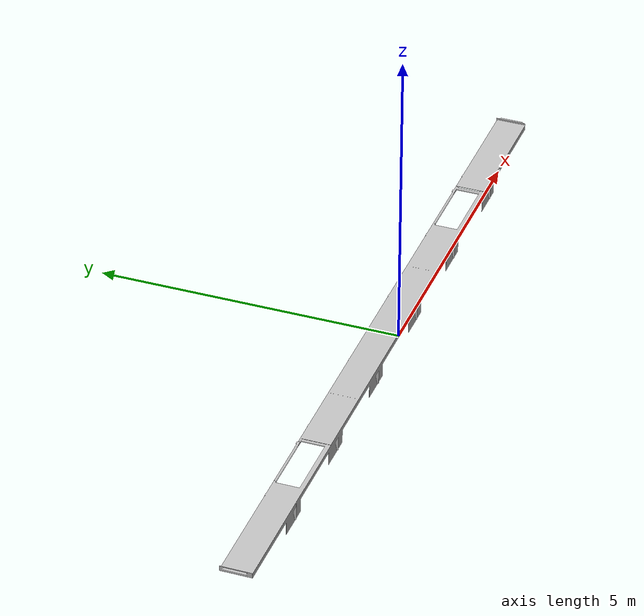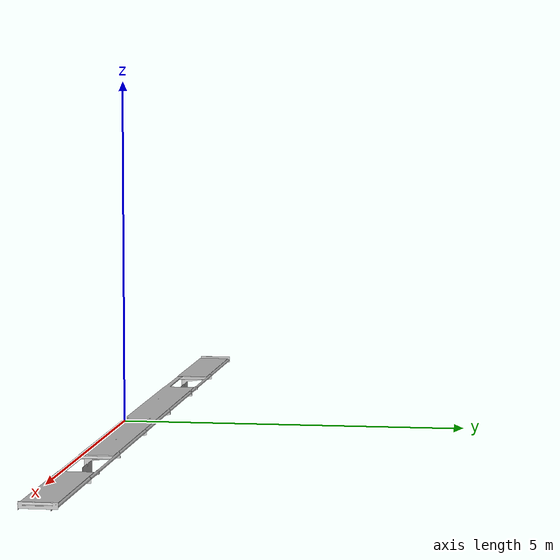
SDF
<?xml version="1.0" encoding="utf-8"?>
<sdf version="1.5">
  <model name="SideWall">
    <pose>0 0 0 0 0 0</pose>
    <plugin name="clock" filename="libgz_clock.so">
      <topic>/gazebo/frc/time</topic>
    </plugin>
    <link name="Body">
      <gravity>1</gravity>
      <self_collide>0</self_collide>
      <pose>0.0022345306515212 0.196633543677098 0.0157346153193116 0 0 0</pose>
      <must_be_base_link>1</must_be_base_link>
      <velocity_decay>
        <linear>0</linear>
        <angular>0</angular>
      </velocity_decay>
      <inertial>
        <mass>112.951936410675</mass>
        <pose>0 0 0 0 0 0</pose>
        <inertia>
          <ixx>3.11353682442545</ixx>
          <ixy>0.108991028972156</ixy>
          <ixz>0.00308042949518617</ixz>
          <iyy>1565.99237259361</iyy>
          <iyz>0.111702980180604</iyz>
          <izz>1568.68147026092</izz>
        </inertia>
      </inertial>
      <collision name="Body_collision">
        <pose>-0.00537143065156627 -0.196633543677098 0.0223653846806884 0 0 0</pose>
        <geometry>
          <mesh>
            <scale>1 1 1</scale>
            <uri>model://SideWall/meshes/Body_col.STL</uri>
          </mesh>
        </geometry>
        <surface>
          <contact>
            <ode />
          </contact>
          <friction>
            <ode>
              <mu>0</mu>
              <mu2>0</mu2>
            </ode>
          </friction>
        </surface>
      </collision>
      <visual name="Body_visual">
        <pose>-0.00537143065156627 -0.196633543677098 0.0223653846806884 0 0 0</pose>
        <material>
          <ambient>0.752941176470588 0.752941176470588 0.752941176470588 1</ambient>
          <diffuse>0.752941176470588 0.752941176470588 0.752941176470588 1</diffuse>
        </material>
        <geometry>
          <mesh>
            <scale>1 1 1</scale>
            <uri>model://SideWall/meshes/Body.STL</uri>
          </mesh>
        </geometry>
      </visual>
    </link>
  </model>
</sdf>
